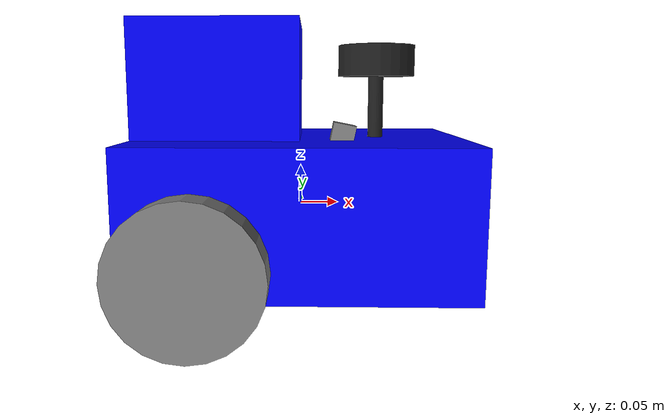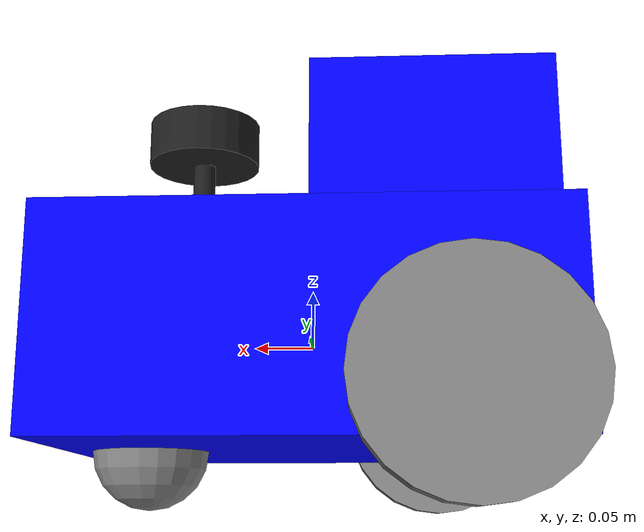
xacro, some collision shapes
<?xml version="1.0"?>
<robot name='robot' xmlns:xacro="http://ros.org/eiki/xacro">

	<xacro:include filename="$(find robot_description)/urdf/gazebo.urdf.xacro" />
        <xacro:include filename="$(find robot_description)/urdf/lidar.urdf.xacro" />
        <xacro:include filename="$(find robot_description)/urdf/depth.urdf.xacro" />
	<xacro:property name="base_width" value="0.31"/>
	<xacro:property name="base_length" value="0.42"/>
	<xacro:property name="base_height" value="0.18"/>

        <xacro:property name="kabina_width" value="0.151"/>
	<xacro:property name="kabina_length" value="0.21"/>
	<xacro:property name="kabina_height" value="0.16"/>

	<xacro:property name="wheel_radius" value="0.09"/>
	<xacro:property name="wheel_width" value="0.04"/>
	<xacro:property name="wheel_ygap" value="0.025"/>
	<xacro:property name="wheel_zoff" value="0.05"/>
	<xacro:property name="wheel_xoff" value="0.12"/>

	<xacro:property name="caster_xoff" value="0.14"/>

	<!-- Inertial properties -->
	<xacro:macro name="box_inertia" params="m w h d">
	    <inertial>
		      <origin xyz="0 0 0" rpy="${pi/2} 0 ${pi/2}"/>
		      <mass value="${m}"/>
		      <inertia ixx="${(m/12) * (h*h + d*d)}" ixy="0.0" ixz="0.0" iyy="${(m/12) * (w*w + d*d)}" iyz="0.0" izz="${(m/12) * (w*w + h*h)}"/>
	    </inertial>
 	</xacro:macro>

	<xacro:macro name="cylinder_inertia" params="m r h">
		<inertial>
			<origin xyz="0 0 0" rpy="${pi/2} 0 0" />
			<mass value="${m}"/>
			<inertia ixx="${(m/12) * (3*r*r + h*h)}" ixy = "0" ixz = "0" iyy="${(m/12) * (3*r*r + h*h)}" iyz = "0" izz="${(m/2) * (r*r)}"/>
		</inertial>
	</xacro:macro>

	<xacro:macro name="sphere_inertia" params="m r">
		<inertial>
			<mass value="${m}"/>
			<inertia ixx="${(2/5) * m * (r*r)}" ixy="0.0" ixz="0.0" iyy="${(2/5) * m * (r*r)}" iyz="0.0" izz="${(2/5) * m * (r*r)}"/>
		</inertial>
	</xacro:macro>

	<!-- Robot Base -->
	<link name="base_link">
		<visual>
			<geometry>
				<box size="${base_length} ${base_width} ${base_height}"/>
			</geometry>
			<material name="blue">
				<color rgba="0 0 1.0 1.0"/>
			</material>
		</visual>

		<collision>
			<geometry>
				<box size="${base_length} ${base_width} ${base_height}"/>
			</geometry>
		</collision>

		<xacro:box_inertia m="136" w="${base_width}" d="${base_length}" h="${base_height}"/>
	</link>

	<joint name="kabina_joint" type="fixed">
		<parent link="base_link"/>
		<child link="kabina_link"/>
		<origin xyz="${-((base_length - kabina_length)/2)} 0.0 ${base_height - 0.02}" rpy="0 0 0"/>
	</joint>

	<link name="kabina_link">
		<visual>
			<geometry>
				<box size="${kabina_length} ${kabina_width} ${kabina_height}"/>
			</geometry>
			<material name="blue">
				<color rgba="0 0 1.0 1.0"/>
			</material>
		</visual>

		<collision>
			<geometry>
				<box size="${kabina_length} ${kabina_width} ${kabina_height}"/>
			</geometry>
		</collision>

		<xacro:box_inertia m="12" w="${kabina_width}" d="${kabina_length}" h="${kabina_height}"/>
	</link>

	<link name="base_footprint"/>

	<joint name="base_joint" type="fixed">
		<parent link="base_link"/>
		<child link="base_footprint"/>
		<origin xyz="0.0 0.0 ${-(wheel_radius+wheel_zoff)}" rpy="0 0 0"/>
	</joint>

	<!-- Wheel macro -->
	<xacro:macro name="wheel" params="prefix x_reflect y_reflect">
		<link name="${prefix}_link">
			<visual>
				<origin xyz="0 0 0" rpy="${pi/2} 0 0"/>
				<geometry>
					<cylinder radius="${wheel_radius}" length="${wheel_width}"/>
				</geometry>
				<material name="Gray">
					<color rgba="0.5 0.5 0.5 1.0"/>
				</material>
			</visual>
			<collision>
				<origin xyz="0 0 0" rpy="${pi/2} 0 0"/>
				<geometry>
					<cylinder radius="${wheel_radius}" length="${wheel_width}"/>
				</geometry>
    		</collision>

    		<xacro:cylinder_inertia m="1" r="${wheel_radius}" h="${wheel_width}"/>
		</link>

		<joint name="${prefix}_joint" type="continuous">
			<parent link="base_link"/>
			<child link="${prefix}_link"/>
			<origin xyz="${x_reflect*wheel_xoff} ${y_reflect*(base_width/2+wheel_ygap)} ${-wheel_zoff}" rpy="0 0 0"/>
			<axis xyz="0 1 0"/>
		</joint>
	</xacro:macro>

	<xacro:wheel prefix="drivewhl_l" x_reflect="-1" y_reflect="1"/>
	<xacro:wheel prefix="drivewhl_r" x_reflect="-1" y_reflect="-1"/>

	<!-- Front smaller wheel -->
	<link name="front_caster">
		<visual>
			<geometry>
				<sphere radius="${(wheel_radius+wheel_zoff-(base_height/2))}"/>
			</geometry>
			<material name="Grey">
				<color rgba="0.5 0.5 0.5 1.0"/>
			</material>
		</visual>
		<collision>
      		<origin xyz="0 0 0" rpy="0 0 0"/>
      		<geometry>
        		<sphere radius="${(wheel_radius+wheel_zoff-(base_height/2))}"/>
        	</geometry>
    	</collision>

    	<xacro:sphere_inertia m="1" r="${(wheel_radius+wheel_zoff-(base_height/2))}"/>
	</link>

	<joint name="caster_joint" type="fixed">
		<parent link="base_link"/>
		<child link="front_caster"/>
		<origin xyz="${caster_xoff} 0.0 ${-(base_height/2)}" rpy="0 0 0"/>
	</joint>

	<gazebo reference="front_caster">
		<material>Gazebo/White</material>
		<mu1 value="0.001"/>
		<mu2 value="0.001"/>
	</gazebo>

</robot>

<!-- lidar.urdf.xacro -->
<robot xmlns:xacro="http://www.ros.org/wiki/xacro">

    <joint name="laser_joint" type="fixed">
        <parent link="base_link"/>
        <child link="laser_frame"/>
        <origin xyz="0.1 0 0.19" rpy="0 0 0"/>
    </joint>

    <link name="laser_frame">
        <visual>
            <geometry>
                <cylinder radius="0.05" length="0.04"/>
            </geometry>
            <material name="black"/>
        </visual>
        <visual>
            <origin xyz="0 0 -0.05"/>
            <geometry>
                <cylinder radius="0.01" length="0.1"/>
            </geometry>
            <material name="black"/>
        </visual>
        <collision>
            <geometry>
                <cylinder radius="0.05" length="0.04"/>
            </geometry>
        </collision>
        <inertial>
            <origin xyz="0 0 0" rpy="0 0 0"/>
            <mass value="0.1" />
            <inertia ixx="${(1/12) * 0.1 * (3*0.05*0.05 + 0.04*0.04)}" ixy="0.0" ixz="0.0"
                     iyy="${(1/12) * 0.1 * (3*0.05*0.05 + 0.04*0.04)}" iyz="0.0"
                     izz="${(1/2) * 0.1 * (0.05*0.05)}" />
        </inertial>
    </link>

    <gazebo reference="laser_frame">
        <material>Gazebo/Black</material>

        <sensor name='laser_sensor_frame' type='gpu_lidar'>"
            <gz_frame_id>robot/laser_frame</gz_frame_id>
            <pose> 0 0 0 0 0 0 </pose>
            <visualize>true</visualize>
            <always_on>true</always_on>
            <update_rate>10</update_rate>
            <ray>
                <scan>
                    <horizontal>
                        <samples>360</samples>
                        <min_angle>-3.14</min_angle>
                        <max_angle>3.14</max_angle>
                    </horizontal>
                </scan>
                <range>
                    <min>0.3</min>
                    <max>12</max>
                </range>
                <noise>
                    <type>gaussian</type>
                    <mean>0.0</mean>
                    <stddev>0.007</stddev>
                </noise>
            </ray>
        </sensor>
    </gazebo>
</robot>

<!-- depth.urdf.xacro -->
<robot xmlns:xacro="http://www.ros.org/wiki/xacro">

    <xacro:property name="M_PI" value="3.1415926535897931" />

    <joint name="depth_joint" type="fixed">
        <parent link="base_link"/>
        <child link="depth_frame"/>
        <origin xyz="0.04 0 0.05" rpy="0 0.2 0"/>
    </joint>

    <material name="aluminum">
      <color rgba="0.5 0.5 0.5 1"/>
    </material>

    <link name="depth_frame">
        <visual>
            <origin xyz="0.2 -0.0475 0" rpy="${M_PI/2} 0 ${M_PI/2}"/>
            <geometry>
                <mesh filename="file://$(find robot_description)/urdf/d455.stl" scale="0.001 0.001 0.001"/>
                <!--box size="0.026 0.124 0.029"/-->
            </geometry>
            <material name="aluminum"/>
        </visual>
        <collision>
            <origin xyz="0.00465 -0.0475 0" rpy="${M_PI/2} 0 ${M_PI/2}"/>
            <geometry>
                <box size="0.026 0.124 0.029"/>
            </geometry>
        </collision>
        <inertial>
            <origin xyz="0 0 0" rpy="0 0 0"/>
            <mass value="0.116" />
            <inertia ixx="${(1/12) * 0.116 * (0.026*0.026+0.029*0.029)}" ixy="0.0" ixz="0.0"
                     iyy="${(1/12) * 0.116 * (0.124*0.124+0.029*0.029)}" iyz="0.0"
                     izz="${(1/12) * 0.116 * (0.124*0.124+0.026*0.026)}" />
        </inertial>
    </link>

    <gazebo reference="depth_frame">
        <sensor name='depth_sensor_frame' type='depth_camera'>"
            <gz_frame_id>robot/depth_frame</gz_frame_id>
            <pose> 0 0 0 0 0 0 </pose>
            <always_on>true</always_on>
            <update_rate>10</update_rate>
            <camera>
                <horizontal_fov>1.51843645</horizontal_fov>
                <image>
                    <width>848</width>
                    <height>480</height>
                    <format>R_FLOAT32</format>
                </image>
                <clip>
                    <near>0.1</near>
                    <far>10</far>
                </clip>
                <lens>
                    <intrinsics>
                    <fx>421.61578369140625</fx>
                    <fy>421.61578369140625</fy>
                    <cx>422.2854309082031</cx>
                    <cy>236.57237243652344</cy>
                    <s>0</s>
                    </intrinsics>
                </lens>
                <noise>
                    <type>gaussian</type>
                    <mean>0.0</mean>
                    <stddev>0.007</stddev>
                </noise>
            </camera>
        </sensor>
        <sensor name="color_sensor_frame" type="camera">
            <gz_frame_id>robot/depth_frame</gz_frame_id>
            <pose>0 0 0 0 0 0</pose>
            <update_rate>30</update_rate>
            <always_on>true</always_on>
            <camera>
                <horizontal_fov>1.20427718</horizontal_fov>
                <image>
                    <width>848</width>
                    <height>480</height>
                </image>
                <clip>
                    <near>0.1</near>
                    <far>50</far>
                </clip>
                <lens>
                    <intrinsics>
                    <fx>615.9603271484375</fx>
                    <fy>616.227294921875</fy>
                    <cx>419.83026123046875</cx>
                    <cy>245.1431427001953</cy>
                    <s>0</s>
                    </intrinsics>
                </lens>
            </camera>
        </sensor>
    </gazebo>
</robot>
